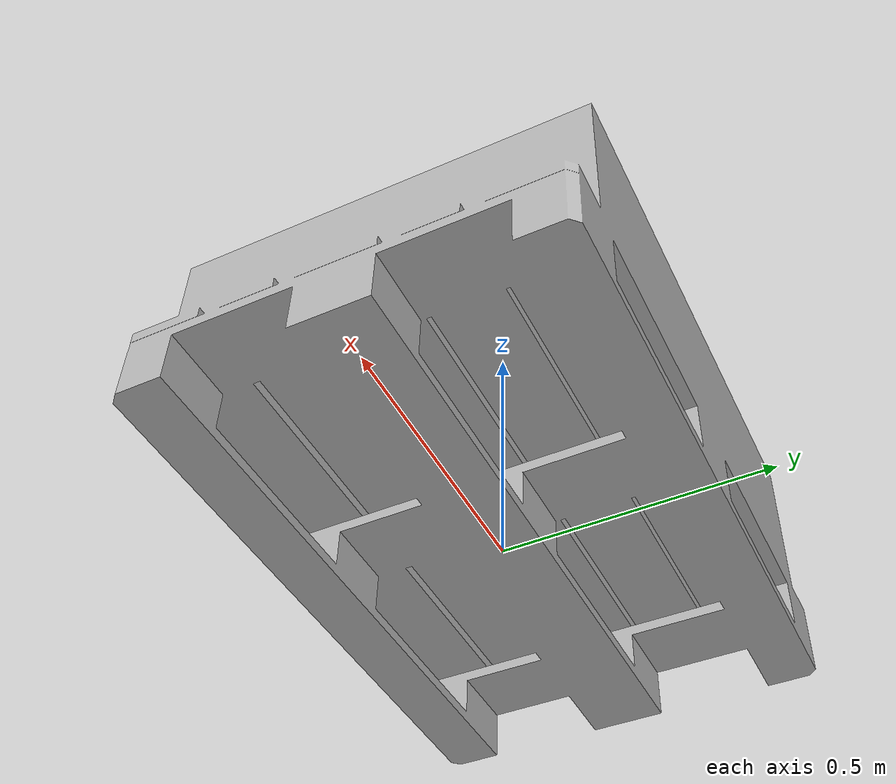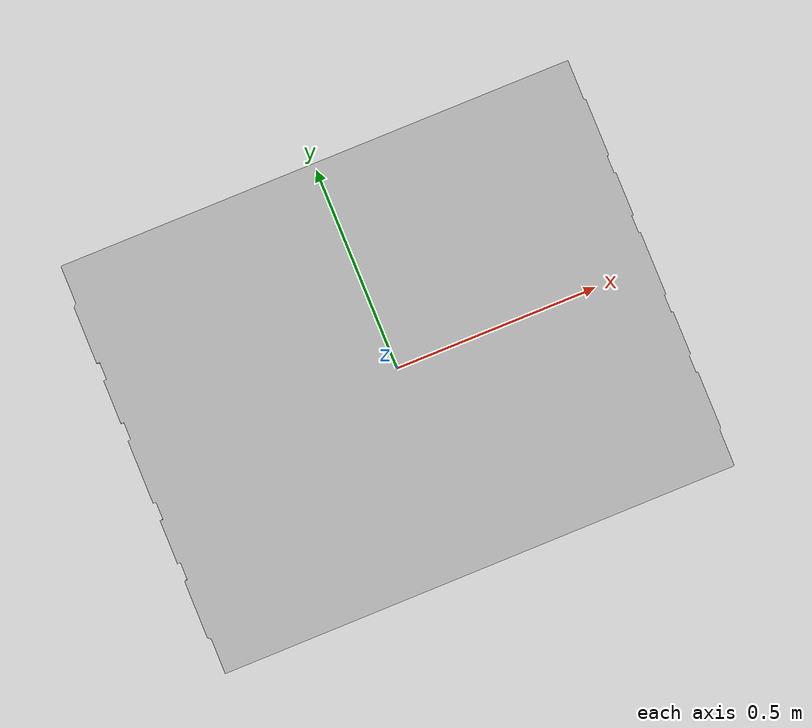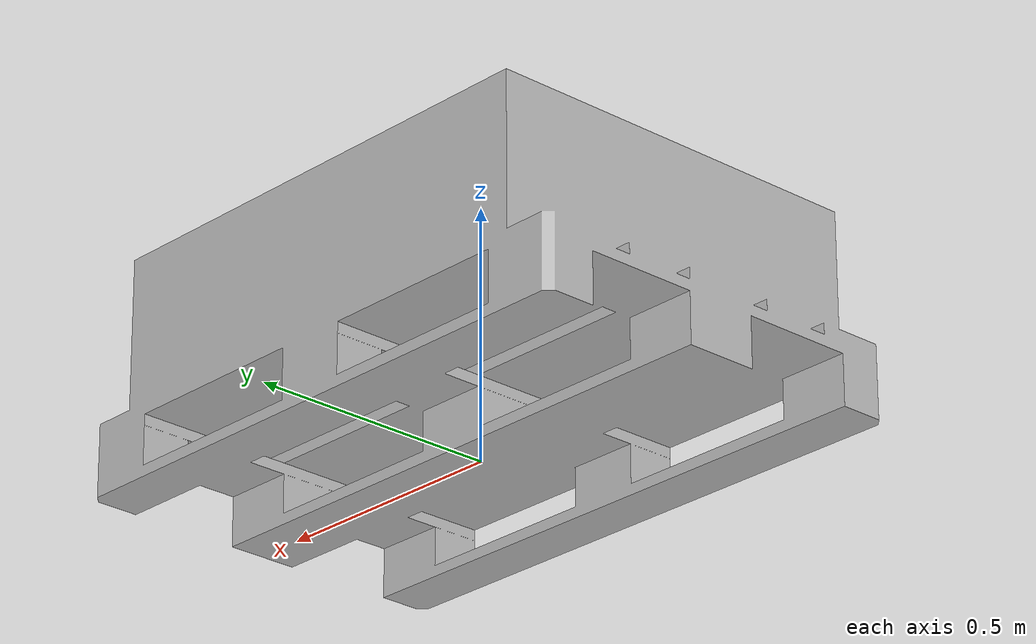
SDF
<?xml version="1.0"?>
<sdf version="1.7">
    <model name="euro_pallet_w_boxes" canonical_link="link" placement_frame="link">
        <static>false</static>

        <link name="link">
            <!--
            Avoid self-collision between the five collision geometries
            inside this link. Default is false, but set explicitly
            to document the intention.
            -->
            <self_collide>false</self_collide>

            <visual name="visual">
                <geometry>
                    <mesh>
                        <uri>
                            model://euro_pallet_w_boxes/meshes/euro_pallet_w_boxes.dae</uri>
                        <scale>1 1 1</scale>
                    </mesh>
                </geometry>
                <!--
                Link of the mesh is at the center of the bottom face of the pallet.
                -->
                <pose>0 0 0 0 0 0</pose>
            </visual>

            <collision name="pallet_top_collision">
                <geometry>
                    <box>
                        <size>1.20 0.8 0.044</size>
                    </box>
                </geometry>
                <pose>0 0 0.122 0 0 0</pose>
            </collision>

            <collision name="pallet_center_collision">
                <geometry>
                    <box>
                        <size>1.20 0.145 0.10</size>
                    </box>
                </geometry>
                <pose>0 0 0.05 0 0 0</pose>
            </collision>

            <collision name="pallet_left_collision">
                <geometry>
                    <box>
                        <size>1.20 0.10 0.10</size>
                    </box>
                </geometry>
                <pose>0 0.35 0.05 0 0 0</pose>
            </collision>

            <collision name="pallet_right_collision">
                <geometry>
                    <box>
                        <size>1.20 0.10 0.10</size>
                    </box>
                </geometry>
                <pose>0 -0.35 0.05 0 0 0</pose>
            </collision>

            <collision name="boxes_collision">
                <geometry>
                    <box>
                        <size>1.20 0.8 0.3</size>
                    </box>
                </geometry>
                <!--
                z = euro_pallet.size_z + box.size_z/2 = 0.144 + 0.3/2 = 0.144 + 0.15 = 0.294 m
                -->
                <pose>0 0 0.644 0 0 0</pose>
            </collision>

            <!-- Mass and inertia for the combined pallet + boxes -->

            <inertial>
                <mass>0.1</mass>
                <inertia>
                    <ixx>0.006976133</ixx>
                    <ixy>0.000000000</ixy>
                    <ixz>0.000000000</ixz>
                    <iyy>0.013642800</iyy>
                    <iyz>0.000000000</iyz>
                    <izz>0.017333333</izz>
                </inertia>
                <!--
                z = whole_body.size_z/2 = (0.144 + 0.3)/2 = 0.222 m.
                -->
                <pose>0 0 0.222 0 0 0</pose>
            </inertial>
        </link>

        <!-- Optional pose-publisher plugin (disabled) -->
    </model>
</sdf>
